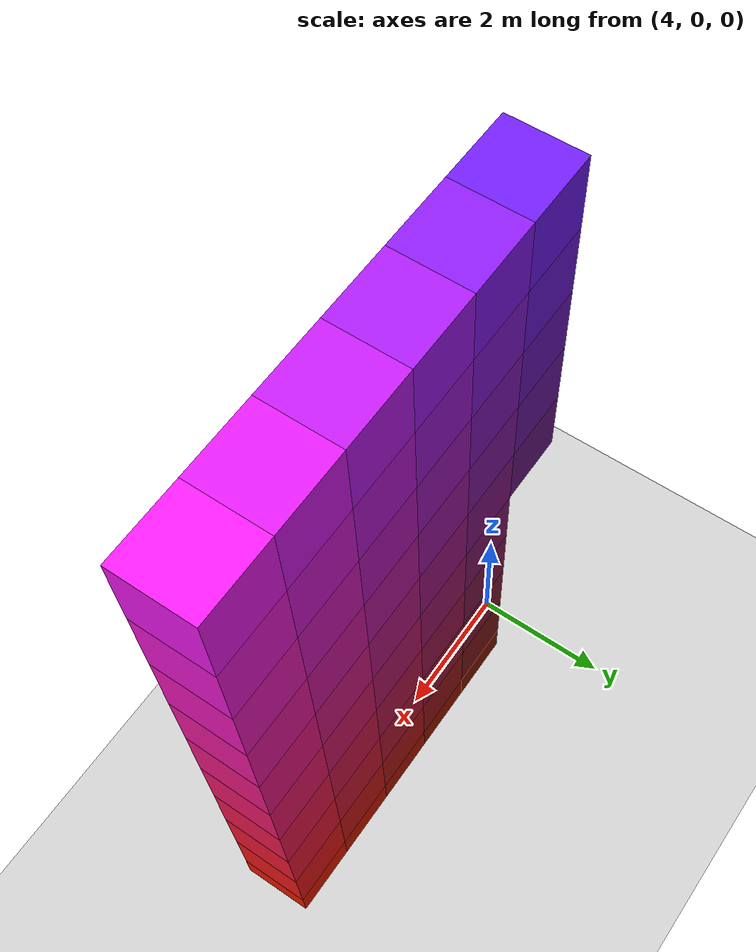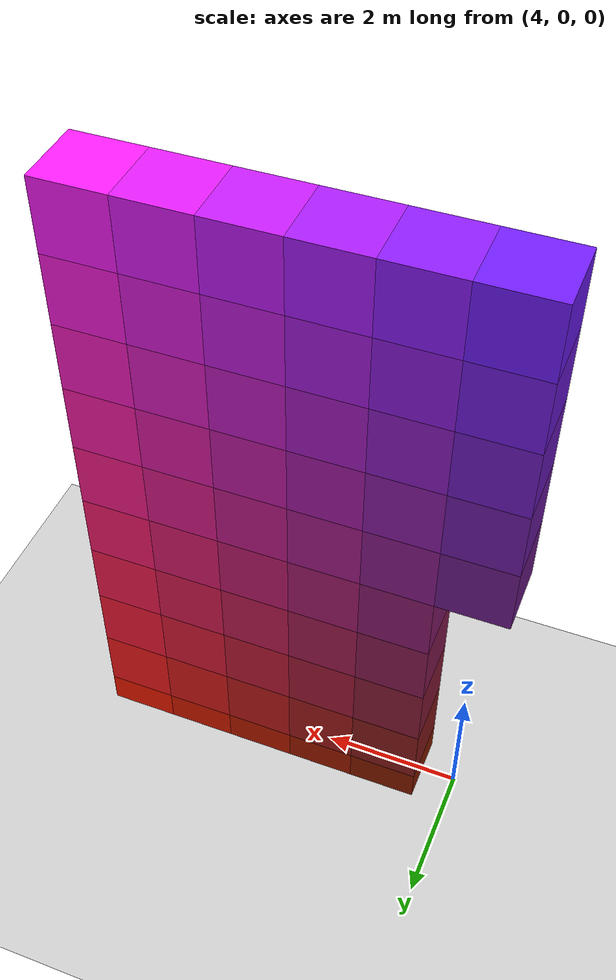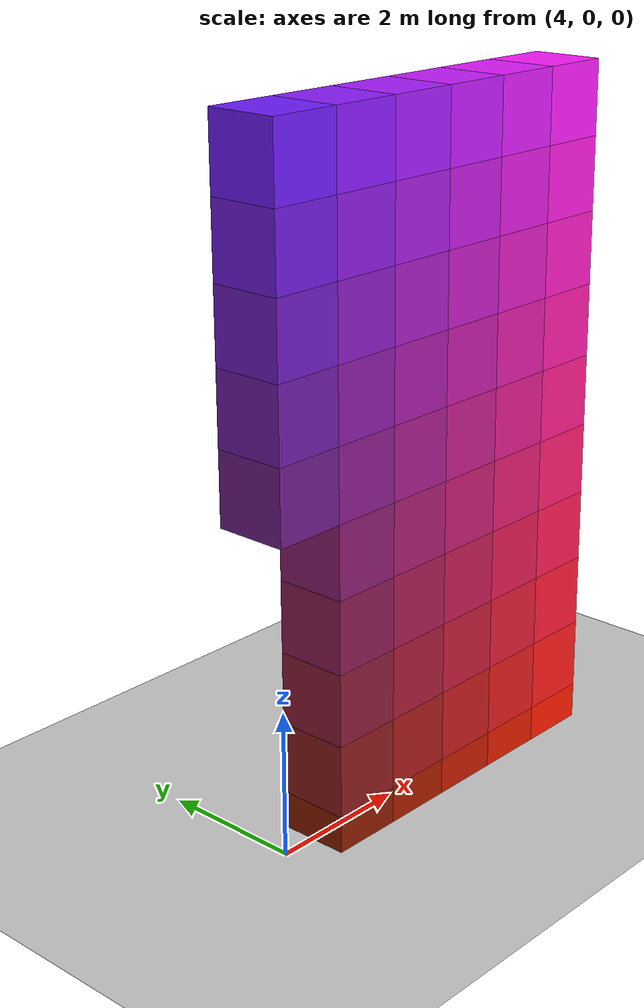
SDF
<sdf version="1.6">
 <world name="default">
  <model name="ground_plane">
   <static>true</static>
   <link name="link">
    <collision name="collision"><geometry><plane><normal>0 0 1</normal></plane></geometry></collision>
    <visual name="visual">
     <geometry><plane><normal>0 0 1</normal><size>100 100</size></plane></geometry>
     <material>
      <ambient>0.8 0.8 0.8 1</ambient>
      <diffuse>0.8 0.8 0.8 1</diffuse>
      <specular>0.8 0.8 0.8 1</specular>
     </material>
    </visual>
   </link>
  </model>
  <model name="model_4_1.0_5">
   <static>true</static>
   <pose>4.0
        0.0
        5.0
        0.0
        0.0
        0.0</pose>
   <link name="box_link">
    <inertial>
     <inertia><ixx>1</ixx><ixy>0</ixy><ixz>0</ixz><iyy>1</iyy><iyz>0</iyz><izz>1</izz></inertia>
     <mass>5.0</mass>
    </inertial>
    <collision name="box_collision"><geometry><box><size>1 1 1</size></box></geometry></collision>
    <visual name="box_visual">
     <geometry><box><size>1 1 1</size></box></geometry>
     <material>
      <ambient>0.4444444444444444
              0.1111111111111111
              0.5555555555555556
              1</ambient>
      <diffuse>0.4444444444444444
              0.1111111111111111
              0.5555555555555556
              1</diffuse>
      <specular>0.4444444444444444
              0.1111111111111111
              0.5555555555555556
              1</specular>
     </material>
    </visual>
   </link>
  </model>
  <model name="model_4_1.0_6">
   <static>true</static>
   <pose>4.0
        0.0
        6.0
        0.0
        0.0
        0.0</pose>
   <link name="box_link">
    <inertial>
     <inertia><ixx>1</ixx><ixy>0</ixy><ixz>0</ixz><iyy>1</iyy><iyz>0</iyz><izz>1</izz></inertia>
     <mass>5.0</mass>
    </inertial>
    <collision name="box_collision"><geometry><box><size>1 1 1</size></box></geometry></collision>
    <visual name="box_visual">
     <geometry><box><size>1 1 1</size></box></geometry>
     <material>
      <ambient>0.4444444444444444
              0.1111111111111111
              0.6666666666666666
              1</ambient>
      <diffuse>0.4444444444444444
              0.1111111111111111
              0.6666666666666666
              1</diffuse>
      <specular>0.4444444444444444
              0.1111111111111111
              0.6666666666666666
              1</specular>
     </material>
    </visual>
   </link>
  </model>
  <model name="model_4_1.0_7">
   <static>true</static>
   <pose>4.0
        0.0
        7.0
        0.0
        0.0
        0.0</pose>
   <link name="box_link">
    <inertial>
     <inertia><ixx>1</ixx><ixy>0</ixy><ixz>0</ixz><iyy>1</iyy><iyz>0</iyz><izz>1</izz></inertia>
     <mass>5.0</mass>
    </inertial>
    <collision name="box_collision"><geometry><box><size>1 1 1</size></box></geometry></collision>
    <visual name="box_visual">
     <geometry><box><size>1 1 1</size></box></geometry>
     <material>
      <ambient>0.4444444444444444
              0.1111111111111111
              0.7777777777777778
              1</ambient>
      <diffuse>0.4444444444444444
              0.1111111111111111
              0.7777777777777778
              1</diffuse>
      <specular>0.4444444444444444
              0.1111111111111111
              0.7777777777777778
              1</specular>
     </material>
    </visual>
   </link>
  </model>
  <model name="model_4_1.0_8">
   <static>true</static>
   <pose>4.0
        0.0
        8.0
        0.0
        0.0
        0.0</pose>
   <link name="box_link">
    <inertial>
     <inertia><ixx>1</ixx><ixy>0</ixy><ixz>0</ixz><iyy>1</iyy><iyz>0</iyz><izz>1</izz></inertia>
     <mass>5.0</mass>
    </inertial>
    <collision name="box_collision"><geometry><box><size>1 1 1</size></box></geometry></collision>
    <visual name="box_visual">
     <geometry><box><size>1 1 1</size></box></geometry>
     <material>
      <ambient>0.4444444444444444
              0.1111111111111111
              0.8888888888888888
              1</ambient>
      <diffuse>0.4444444444444444
              0.1111111111111111
              0.8888888888888888
              1</diffuse>
      <specular>0.4444444444444444
              0.1111111111111111
              0.8888888888888888
              1</specular>
     </material>
    </visual>
   </link>
  </model>
  <model name="model_4_1.0_9">
   <static>true</static>
   <pose>4.0
        0.0
        9.0
        0.0
        0.0
        0.0</pose>
   <link name="box_link">
    <inertial>
     <inertia><ixx>1</ixx><ixy>0</ixy><ixz>0</ixz><iyy>1</iyy><iyz>0</iyz><izz>1</izz></inertia>
     <mass>5.0</mass>
    </inertial>
    <collision name="box_collision"><geometry><box><size>1 1 1</size></box></geometry></collision>
    <visual name="box_visual">
     <geometry><box><size>1 1 1</size></box></geometry>
     <material>
      <ambient>0.4444444444444444
              0.1111111111111111
              1.0
              1</ambient>
      <diffuse>0.4444444444444444
              0.1111111111111111
              1.0
              1</diffuse>
      <specular>0.4444444444444444
              0.1111111111111111
              1.0
              1</specular>
     </material>
    </visual>
   </link>
  </model>
  <model name="model_5_1.0_0">
   <static>true</static>
   <pose>5.0
        0.0
        0.0
        0.0
        0.0
        0.0</pose>
   <link name="box_link">
    <inertial>
     <inertia><ixx>1</ixx><ixy>0</ixy><ixz>0</ixz><iyy>1</iyy><iyz>0</iyz><izz>1</izz></inertia>
     <mass>5.0</mass>
    </inertial>
    <collision name="box_collision"><geometry><box><size>1 1 1</size></box></geometry></collision>
    <visual name="box_visual">
     <geometry><box><size>1 1 1</size></box></geometry>
     <material>
      <ambient>0.5555555555555556
              0.1111111111111111
              0.0
              1</ambient>
      <diffuse>0.5555555555555556
              0.1111111111111111
              0.0
              1</diffuse>
      <specular>0.5555555555555556
              0.1111111111111111
              0.0
              1</specular>
     </material>
    </visual>
   </link>
  </model>
  <model name="model_5_1.0_1">
   <static>true</static>
   <pose>5.0
        0.0
        1.0
        0.0
        0.0
        0.0</pose>
   <link name="box_link">
    <inertial>
     <inertia><ixx>1</ixx><ixy>0</ixy><ixz>0</ixz><iyy>1</iyy><iyz>0</iyz><izz>1</izz></inertia>
     <mass>5.0</mass>
    </inertial>
    <collision name="box_collision"><geometry><box><size>1 1 1</size></box></geometry></collision>
    <visual name="box_visual">
     <geometry><box><size>1 1 1</size></box></geometry>
     <material>
      <ambient>0.5555555555555556
              0.1111111111111111
              0.1111111111111111
              1</ambient>
      <diffuse>0.5555555555555556
              0.1111111111111111
              0.1111111111111111
              1</diffuse>
      <specular>0.5555555555555556
              0.1111111111111111
              0.1111111111111111
              1</specular>
     </material>
    </visual>
   </link>
  </model>
  <model name="model_5_1.0_2">
   <static>true</static>
   <pose>5.0
        0.0
        2.0
        0.0
        0.0
        0.0</pose>
   <link name="box_link">
    <inertial>
     <inertia><ixx>1</ixx><ixy>0</ixy><ixz>0</ixz><iyy>1</iyy><iyz>0</iyz><izz>1</izz></inertia>
     <mass>5.0</mass>
    </inertial>
    <collision name="box_collision"><geometry><box><size>1 1 1</size></box></geometry></collision>
    <visual name="box_visual">
     <geometry><box><size>1 1 1</size></box></geometry>
     <material>
      <ambient>0.5555555555555556
              0.1111111111111111
              0.2222222222222222
              1</ambient>
      <diffuse>0.5555555555555556
              0.1111111111111111
              0.2222222222222222
              1</diffuse>
      <specular>0.5555555555555556
              0.1111111111111111
              0.2222222222222222
              1</specular>
     </material>
    </visual>
   </link>
  </model>
  <model name="model_5_1.0_3">
   <static>true</static>
   <pose>5.0
        0.0
        3.0
        0.0
        0.0
        0.0</pose>
   <link name="box_link">
    <inertial>
     <inertia><ixx>1</ixx><ixy>0</ixy><ixz>0</ixz><iyy>1</iyy><iyz>0</iyz><izz>1</izz></inertia>
     <mass>5.0</mass>
    </inertial>
    <collision name="box_collision"><geometry><box><size>1 1 1</size></box></geometry></collision>
    <visual name="box_visual">
     <geometry><box><size>1 1 1</size></box></geometry>
     <material>
      <ambient>0.5555555555555556
              0.1111111111111111
              0.3333333333333333
              1</ambient>
      <diffuse>0.5555555555555556
              0.1111111111111111
              0.3333333333333333
              1</diffuse>
      <specular>0.5555555555555556
              0.1111111111111111
              0.3333333333333333
              1</specular>
     </material>
    </visual>
   </link>
  </model>
  <model name="model_5_1.0_4">
   <static>true</static>
   <pose>5.0
        0.0
        4.0
        0.0
        0.0
        0.0</pose>
   <link name="box_link">
    <inertial>
     <inertia><ixx>1</ixx><ixy>0</ixy><ixz>0</ixz><iyy>1</iyy><iyz>0</iyz><izz>1</izz></inertia>
     <mass>5.0</mass>
    </inertial>
    <collision name="box_collision"><geometry><box><size>1 1 1</size></box></geometry></collision>
    <visual name="box_visual">
     <geometry><box><size>1 1 1</size></box></geometry>
     <material>
      <ambient>0.5555555555555556
              0.1111111111111111
              0.4444444444444444
              1</ambient>
      <diffuse>0.5555555555555556
              0.1111111111111111
              0.4444444444444444
              1</diffuse>
      <specular>0.5555555555555556
              0.1111111111111111
              0.4444444444444444
              1</specular>
     </material>
    </visual>
   </link>
  </model>
  <model name="model_5_1.0_5">
   <static>true</static>
   <pose>5.0
        0.0
        5.0
        0.0
        0.0
        0.0</pose>
   <link name="box_link">
    <inertial>
     <inertia><ixx>1</ixx><ixy>0</ixy><ixz>0</ixz><iyy>1</iyy><iyz>0</iyz><izz>1</izz></inertia>
     <mass>5.0</mass>
    </inertial>
    <collision name="box_collision"><geometry><box><size>1 1 1</size></box></geometry></collision>
    <visual name="box_visual">
     <geometry><box><size>1 1 1</size></box></geometry>
     <material>
      <ambient>0.5555555555555556
              0.1111111111111111
              0.5555555555555556
              1</ambient>
      <diffuse>0.5555555555555556
              0.1111111111111111
              0.5555555555555556
              1</diffuse>
      <specular>0.5555555555555556
              0.1111111111111111
              0.5555555555555556
              1</specular>
     </material>
    </visual>
   </link>
  </model>
  <model name="model_5_1.0_6">
   <static>true</static>
   <pose>5.0
        0.0
        6.0
        0.0
        0.0
        0.0</pose>
   <link name="box_link">
    <inertial>
     <inertia><ixx>1</ixx><ixy>0</ixy><ixz>0</ixz><iyy>1</iyy><iyz>0</iyz><izz>1</izz></inertia>
     <mass>5.0</mass>
    </inertial>
    <collision name="box_collision"><geometry><box><size>1 1 1</size></box></geometry></collision>
    <visual name="box_visual">
     <geometry><box><size>1 1 1</size></box></geometry>
     <material>
      <ambient>0.5555555555555556
              0.1111111111111111
              0.6666666666666666
              1</ambient>
      <diffuse>0.5555555555555556
              0.1111111111111111
              0.6666666666666666
              1</diffuse>
      <specular>0.5555555555555556
              0.1111111111111111
              0.6666666666666666
              1</specular>
     </material>
    </visual>
   </link>
  </model>
  <model name="model_5_1.0_7">
   <static>true</static>
   <pose>5.0
        0.0
        7.0
        0.0
        0.0
        0.0</pose>
   <link name="box_link">
    <inertial>
     <inertia><ixx>1</ixx><ixy>0</ixy><ixz>0</ixz><iyy>1</iyy><iyz>0</iyz><izz>1</izz></inertia>
     <mass>5.0</mass>
    </inertial>
    <collision name="box_collision"><geometry><box><size>1 1 1</size></box></geometry></collision>
    <visual name="box_visual">
     <geometry><box><size>1 1 1</size></box></geometry>
     <material>
      <ambient>0.5555555555555556
              0.1111111111111111
              0.7777777777777778
              1</ambient>
      <diffuse>0.5555555555555556
              0.1111111111111111
              0.7777777777777778
              1</diffuse>
      <specular>0.5555555555555556
              0.1111111111111111
              0.7777777777777778
              1</specular>
     </material>
    </visual>
   </link>
  </model>
  <model name="model_5_1.0_8">
   <static>true</static>
   <pose>5.0
        0.0
        8.0
        0.0
        0.0
        0.0</pose>
   <link name="box_link">
    <inertial>
     <inertia><ixx>1</ixx><ixy>0</ixy><ixz>0</ixz><iyy>1</iyy><iyz>0</iyz><izz>1</izz></inertia>
     <mass>5.0</mass>
    </inertial>
    <collision name="box_collision"><geometry><box><size>1 1 1</size></box></geometry></collision>
    <visual name="box_visual">
     <geometry><box><size>1 1 1</size></box></geometry>
     <material>
      <ambient>0.5555555555555556
              0.1111111111111111
              0.8888888888888888
              1</ambient>
      <diffuse>0.5555555555555556
              0.1111111111111111
              0.8888888888888888
              1</diffuse>
      <specular>0.5555555555555556
              0.1111111111111111
              0.8888888888888888
              1</specular>
     </material>
    </visual>
   </link>
  </model>
  <model name="model_5_1.0_9">
   <static>true</static>
   <pose>5.0
        0.0
        9.0
        0.0
        0.0
        0.0</pose>
   <link name="box_link">
    <inertial>
     <inertia><ixx>1</ixx><ixy>0</ixy><ixz>0</ixz><iyy>1</iyy><iyz>0</iyz><izz>1</izz></inertia>
     <mass>5.0</mass>
    </inertial>
    <collision name="box_collision"><geometry><box><size>1 1 1</size></box></geometry></collision>
    <visual name="box_visual">
     <geometry><box><size>1 1 1</size></box></geometry>
     <material>
      <ambient>0.5555555555555556
              0.1111111111111111
              1.0
              1</ambient>
      <diffuse>0.5555555555555556
              0.1111111111111111
              1.0
              1</diffuse>
      <specular>0.5555555555555556
              0.1111111111111111
              1.0
              1</specular>
     </material>
    </visual>
   </link>
  </model>
  <model name="model_6_1.0_0">
   <static>true</static>
   <pose>6.0
        0.0
        0.0
        0.0
        0.0
        0.0</pose>
   <link name="box_link">
    <inertial>
     <inertia><ixx>1</ixx><ixy>0</ixy><ixz>0</ixz><iyy>1</iyy><iyz>0</iyz><izz>1</izz></inertia>
     <mass>5.0</mass>
    </inertial>
    <collision name="box_collision"><geometry><box><size>1 1 1</size></box></geometry></collision>
    <visual name="box_visual">
     <geometry><box><size>1 1 1</size></box></geometry>
     <material>
      <ambient>0.6666666666666666
              0.1111111111111111
              0.0
              1</ambient>
      <diffuse>0.6666666666666666
              0.1111111111111111
              0.0
              1</diffuse>
      <specular>0.6666666666666666
              0.1111111111111111
              0.0
              1</specular>
     </material>
    </visual>
   </link>
  </model>
  <model name="model_6_1.0_1">
   <static>true</static>
   <pose>6.0
        0.0
        1.0
        0.0
        0.0
        0.0</pose>
   <link name="box_link">
    <inertial>
     <inertia><ixx>1</ixx><ixy>0</ixy><ixz>0</ixz><iyy>1</iyy><iyz>0</iyz><izz>1</izz></inertia>
     <mass>5.0</mass>
    </inertial>
    <collision name="box_collision"><geometry><box><size>1 1 1</size></box></geometry></collision>
    <visual name="box_visual">
     <geometry><box><size>1 1 1</size></box></geometry>
     <material>
      <ambient>0.6666666666666666
              0.1111111111111111
              0.1111111111111111
              1</ambient>
      <diffuse>0.6666666666666666
              0.1111111111111111
              0.1111111111111111
              1</diffuse>
      <specular>0.6666666666666666
              0.1111111111111111
              0.1111111111111111
              1</specular>
     </material>
    </visual>
   </link>
  </model>
  <model name="model_6_1.0_2">
   <static>true</static>
   <pose>6.0
        0.0
        2.0
        0.0
        0.0
        0.0</pose>
   <link name="box_link">
    <inertial>
     <inertia><ixx>1</ixx><ixy>0</ixy><ixz>0</ixz><iyy>1</iyy><iyz>0</iyz><izz>1</izz></inertia>
     <mass>5.0</mass>
    </inertial>
    <collision name="box_collision"><geometry><box><size>1 1 1</size></box></geometry></collision>
    <visual name="box_visual">
     <geometry><box><size>1 1 1</size></box></geometry>
     <material>
      <ambient>0.6666666666666666
              0.1111111111111111
              0.2222222222222222
              1</ambient>
      <diffuse>0.6666666666666666
              0.1111111111111111
              0.2222222222222222
              1</diffuse>
      <specular>0.6666666666666666
              0.1111111111111111
              0.2222222222222222
              1</specular>
     </material>
    </visual>
   </link>
  </model>
  <model name="model_6_1.0_3">
   <static>true</static>
   <pose>6.0
        0.0
        3.0
        0.0
        0.0
        0.0</pose>
   <link name="box_link">
    <inertial>
     <inertia><ixx>1</ixx><ixy>0</ixy><ixz>0</ixz><iyy>1</iyy><iyz>0</iyz><izz>1</izz></inertia>
     <mass>5.0</mass>
    </inertial>
    <collision name="box_collision"><geometry><box><size>1 1 1</size></box></geometry></collision>
    <visual name="box_visual">
     <geometry><box><size>1 1 1</size></box></geometry>
     <material>
      <ambient>0.6666666666666666
              0.1111111111111111
              0.3333333333333333
              1</ambient>
      <diffuse>0.6666666666666666
              0.1111111111111111
              0.3333333333333333
              1</diffuse>
      <specular>0.6666666666666666
              0.1111111111111111
              0.3333333333333333
              1</specular>
     </material>
    </visual>
   </link>
  </model>
  <model name="model_6_1.0_4">
   <static>true</static>
   <pose>6.0
        0.0
        4.0
        0.0
        0.0
        0.0</pose>
   <link name="box_link">
    <inertial>
     <inertia><ixx>1</ixx><ixy>0</ixy><ixz>0</ixz><iyy>1</iyy><iyz>0</iyz><izz>1</izz></inertia>
     <mass>5.0</mass>
    </inertial>
    <collision name="box_collision"><geometry><box><size>1 1 1</size></box></geometry></collision>
    <visual name="box_visual">
     <geometry><box><size>1 1 1</size></box></geometry>
     <material>
      <ambient>0.6666666666666666
              0.1111111111111111
              0.4444444444444444
              1</ambient>
      <diffuse>0.6666666666666666
              0.1111111111111111
              0.4444444444444444
              1</diffuse>
      <specular>0.6666666666666666
              0.1111111111111111
              0.4444444444444444
              1</specular>
     </material>
    </visual>
   </link>
  </model>
  <model name="model_6_1.0_5">
   <static>true</static>
   <pose>6.0
        0.0
        5.0
        0.0
        0.0
        0.0</pose>
   <link name="box_link">
    <inertial>
     <inertia><ixx>1</ixx><ixy>0</ixy><ixz>0</ixz><iyy>1</iyy><iyz>0</iyz><izz>1</izz></inertia>
     <mass>5.0</mass>
    </inertial>
    <collision name="box_collision"><geometry><box><size>1 1 1</size></box></geometry></collision>
    <visual name="box_visual">
     <geometry><box><size>1 1 1</size></box></geometry>
     <material>
      <ambient>0.6666666666666666
              0.1111111111111111
              0.5555555555555556
              1</ambient>
      <diffuse>0.6666666666666666
              0.1111111111111111
              0.5555555555555556
              1</diffuse>
      <specular>0.6666666666666666
              0.1111111111111111
              0.5555555555555556
              1</specular>
     </material>
    </visual>
   </link>
  </model>
  <model name="model_6_1.0_6">
   <static>true</static>
   <pose>6.0
        0.0
        6.0
        0.0
        0.0
        0.0</pose>
   <link name="box_link">
    <inertial>
     <inertia><ixx>1</ixx><ixy>0</ixy><ixz>0</ixz><iyy>1</iyy><iyz>0</iyz><izz>1</izz></inertia>
     <mass>5.0</mass>
    </inertial>
    <collision name="box_collision"><geometry><box><size>1 1 1</size></box></geometry></collision>
    <visual name="box_visual">
     <geometry><box><size>1 1 1</size></box></geometry>
     <material>
      <ambient>0.6666666666666666
              0.1111111111111111
              0.6666666666666666
              1</ambient>
      <diffuse>0.6666666666666666
              0.1111111111111111
              0.6666666666666666
              1</diffuse>
      <specular>0.6666666666666666
              0.1111111111111111
              0.6666666666666666
              1</specular>
     </material>
    </visual>
   </link>
  </model>
  <model name="model_6_1.0_7">
   <static>true</static>
   <pose>6.0
        0.0
        7.0
        0.0
        0.0
        0.0</pose>
   <link name="box_link">
    <inertial>
     <inertia><ixx>1</ixx><ixy>0</ixy><ixz>0</ixz><iyy>1</iyy><iyz>0</iyz><izz>1</izz></inertia>
     <mass>5.0</mass>
    </inertial>
    <collision name="box_collision"><geometry><box><size>1 1 1</size></box></geometry></collision>
    <visual name="box_visual">
     <geometry><box><size>1 1 1</size></box></geometry>
     <material>
      <ambient>0.6666666666666666
              0.1111111111111111
              0.7777777777777778
              1</ambient>
      <diffuse>0.6666666666666666
              0.1111111111111111
              0.7777777777777778
              1</diffuse>
      <specular>0.6666666666666666
              0.1111111111111111
              0.7777777777777778
              1</specular>
     </material>
    </visual>
   </link>
  </model>
  <model name="model_6_1.0_8">
   <static>true</static>
   <pose>6.0
        0.0
        8.0
        0.0
        0.0
        0.0</pose>
   <link name="box_link">
    <inertial>
     <inertia><ixx>1</ixx><ixy>0</ixy><ixz>0</ixz><iyy>1</iyy><iyz>0</iyz><izz>1</izz></inertia>
     <mass>5.0</mass>
    </inertial>
    <collision name="box_collision"><geometry><box><size>1 1 1</size></box></geometry></collision>
    <visual name="box_visual">
     <geometry><box><size>1 1 1</size></box></geometry>
     <material>
      <ambient>0.6666666666666666
              0.1111111111111111
              0.8888888888888888
              1</ambient>
      <diffuse>0.6666666666666666
              0.1111111111111111
              0.8888888888888888
              1</diffuse>
      <specular>0.6666666666666666
              0.1111111111111111
              0.8888888888888888
              1</specular>
     </material>
    </visual>
   </link>
  </model>
  <model name="model_6_1.0_9">
   <static>true</static>
   <pose>6.0
        0.0
        9.0
        0.0
        0.0
        0.0</pose>
   <link name="box_link">
    <inertial>
     <inertia><ixx>1</ixx><ixy>0</ixy><ixz>0</ixz><iyy>1</iyy><iyz>0</iyz><izz>1</izz></inertia>
     <mass>5.0</mass>
    </inertial>
    <collision name="box_collision"><geometry><box><size>1 1 1</size></box></geometry></collision>
    <visual name="box_visual">
     <geometry><box><size>1 1 1</size></box></geometry>
     <material>
      <ambient>0.6666666666666666
              0.1111111111111111
              1.0
              1</ambient>
      <diffuse>0.6666666666666666
              0.1111111111111111
              1.0
              1</diffuse>
      <specular>0.6666666666666666
              0.1111111111111111
              1.0
              1</specular>
     </material>
    </visual>
   </link>
  </model>
  <model name="model_7_1.0_0">
   <static>true</static>
   <pose>7.0
        0.0
        0.0
        0.0
        0.0
        0.0</pose>
   <link name="box_link">
    <inertial>
     <inertia><ixx>1</ixx><ixy>0</ixy><ixz>0</ixz><iyy>1</iyy><iyz>0</iyz><izz>1</izz></inertia>
     <mass>5.0</mass>
    </inertial>
    <collision name="box_collision"><geometry><box><size>1 1 1</size></box></geometry></collision>
    <visual name="box_visual">
     <geometry><box><size>1 1 1</size></box></geometry>
     <material>
      <ambient>0.7777777777777778
              0.1111111111111111
              0.0
              1</ambient>
      <diffuse>0.7777777777777778
              0.1111111111111111
              0.0
              1</diffuse>
      <specular>0.7777777777777778
              0.1111111111111111
              0.0
              1</specular>
     </material>
    </visual>
   </link>
  </model>
  <model name="model_7_1.0_1">
   <static>true</static>
   <pose>7.0
        0.0
        1.0
        0.0
        0.0
        0.0</pose>
   <link name="box_link">
    <inertial>
     <inertia><ixx>1</ixx><ixy>0</ixy><ixz>0</ixz><iyy>1</iyy><iyz>0</iyz><izz>1</izz></inertia>
     <mass>5.0</mass>
    </inertial>
    <collision name="box_collision"><geometry><box><size>1 1 1</size></box></geometry></collision>
    <visual name="box_visual">
     <geometry><box><size>1 1 1</size></box></geometry>
     <material>
      <ambient>0.7777777777777778
              0.1111111111111111
              0.1111111111111111
              1</ambient>
      <diffuse>0.7777777777777778
              0.1111111111111111
              0.1111111111111111
              1</diffuse>
      <specular>0.7777777777777778
              0.1111111111111111
              0.1111111111111111
              1</specular>
     </material>
    </visual>
   </link>
  </model>
  <model name="model_7_1.0_2">
   <static>true</static>
   <pose>7.0
        0.0
        2.0
        0.0
        0.0
        0.0</pose>
   <link name="box_link">
    <inertial>
     <inertia><ixx>1</ixx><ixy>0</ixy><ixz>0</ixz><iyy>1</iyy><iyz>0</iyz><izz>1</izz></inertia>
     <mass>5.0</mass>
    </inertial>
    <collision name="box_collision"><geometry><box><size>1 1 1</size></box></geometry></collision>
    <visual name="box_visual">
     <geometry><box><size>1 1 1</size></box></geometry>
     <material>
      <ambient>0.7777777777777778
              0.1111111111111111
              0.2222222222222222
              1</ambient>
      <diffuse>0.7777777777777778
              0.1111111111111111
              0.2222222222222222
              1</diffuse>
      <specular>0.7777777777777778
              0.1111111111111111
              0.2222222222222222
              1</specular>
     </material>
    </visual>
   </link>
  </model>
  <model name="model_7_1.0_3">
   <static>true</static>
   <pose>7.0
        0.0
        3.0
        0.0
        0.0
        0.0</pose>
   <link name="box_link">
    <inertial>
     <inertia><ixx>1</ixx><ixy>0</ixy><ixz>0</ixz><iyy>1</iyy><iyz>0</iyz><izz>1</izz></inertia>
     <mass>5.0</mass>
    </inertial>
    <collision name="box_collision"><geometry><box><size>1 1 1</size></box></geometry></collision>
    <visual name="box_visual">
     <geometry><box><size>1 1 1</size></box></geometry>
     <material>
      <ambient>0.7777777777777778
              0.1111111111111111
              0.3333333333333333
              1</ambient>
      <diffuse>0.7777777777777778
              0.1111111111111111
              0.3333333333333333
              1</diffuse>
      <specular>0.7777777777777778
              0.1111111111111111
              0.3333333333333333
              1</specular>
     </material>
    </visual>
   </link>
  </model>
  <model name="model_7_1.0_4">
   <static>true</static>
   <pose>7.0
        0.0
        4.0
        0.0
        0.0
        0.0</pose>
   <link name="box_link">
    <inertial>
     <inertia><ixx>1</ixx><ixy>0</ixy><ixz>0</ixz><iyy>1</iyy><iyz>0</iyz><izz>1</izz></inertia>
     <mass>5.0</mass>
    </inertial>
    <collision name="box_collision"><geometry><box><size>1 1 1</size></box></geometry></collision>
    <visual name="box_visual">
     <geometry><box><size>1 1 1</size></box></geometry>
     <material>
      <ambient>0.7777777777777778
              0.1111111111111111
              0.4444444444444444
              1</ambient>
      <diffuse>0.7777777777777778
              0.1111111111111111
              0.4444444444444444
              1</diffuse>
      <specular>0.7777777777777778
              0.1111111111111111
              0.4444444444444444
              1</specular>
     </material>
    </visual>
   </link>
  </model>
  <model name="model_7_1.0_5">
   <static>true</static>
   <pose>7.0
        0.0
        5.0
        0.0
        0.0
        0.0</pose>
   <link name="box_link">
    <inertial>
     <inertia><ixx>1</ixx><ixy>0</ixy><ixz>0</ixz><iyy>1</iyy><iyz>0</iyz><izz>1</izz></inertia>
     <mass>5.0</mass>
    </inertial>
    <collision name="box_collision"><geometry><box><size>1 1 1</size></box></geometry></collision>
    <visual name="box_visual">
     <geometry><box><size>1 1 1</size></box></geometry>
     <material>
      <ambient>0.7777777777777778
              0.1111111111111111
              0.5555555555555556
              1</ambient>
      <diffuse>0.7777777777777778
              0.1111111111111111
              0.5555555555555556
              1</diffuse>
      <specular>0.7777777777777778
              0.1111111111111111
              0.5555555555555556
              1</specular>
     </material>
    </visual>
   </link>
  </model>
  <model name="model_7_1.0_6">
   <static>true</static>
   <pose>7.0
        0.0
        6.0
        0.0
        0.0
        0.0</pose>
   <link name="box_link">
    <inertial>
     <inertia><ixx>1</ixx><ixy>0</ixy><ixz>0</ixz><iyy>1</iyy><iyz>0</iyz><izz>1</izz></inertia>
     <mass>5.0</mass>
    </inertial>
    <collision name="box_collision"><geometry><box><size>1 1 1</size></box></geometry></collision>
    <visual name="box_visual">
     <geometry><box><size>1 1 1</size></box></geometry>
     <material>
      <ambient>0.7777777777777778
              0.1111111111111111
              0.6666666666666666
              1</ambient>
      <diffuse>0.7777777777777778
              0.1111111111111111
              0.6666666666666666
              1</diffuse>
      <specular>0.7777777777777778
              0.1111111111111111
              0.6666666666666666
              1</specular>
     </material>
    </visual>
   </link>
  </model>
  <model name="model_7_1.0_7">
   <static>true</static>
   <pose>7.0
        0.0
        7.0
        0.0
        0.0
        0.0</pose>
   <link name="box_link">
    <inertial>
     <inertia><ixx>1</ixx><ixy>0</ixy><ixz>0</ixz><iyy>1</iyy><iyz>0</iyz><izz>1</izz></inertia>
     <mass>5.0</mass>
    </inertial>
    <collision name="box_collision"><geometry><box><size>1 1 1</size></box></geometry></collision>
    <visual name="box_visual">
     <geometry><box><size>1 1 1</size></box></geometry>
     <material>
      <ambient>0.7777777777777778
              0.1111111111111111
              0.7777777777777778
              1</ambient>
      <diffuse>0.7777777777777778
              0.1111111111111111
              0.7777777777777778
              1</diffuse>
      <specular>0.7777777777777778
              0.1111111111111111
              0.7777777777777778
              1</specular>
     </material>
    </visual>
   </link>
  </model>
  <model name="model_7_1.0_8">
   <static>true</static>
   <pose>7.0
        0.0
        8.0
        0.0
        0.0
        0.0</pose>
   <link name="box_link">
    <inertial>
     <inertia><ixx>1</ixx><ixy>0</ixy><ixz>0</ixz><iyy>1</iyy><iyz>0</iyz><izz>1</izz></inertia>
     <mass>5.0</mass>
    </inertial>
    <collision name="box_collision"><geometry><box><size>1 1 1</size></box></geometry></collision>
    <visual name="box_visual">
     <geometry><box><size>1 1 1</size></box></geometry>
     <material>
      <ambient>0.7777777777777778
              0.1111111111111111
              0.8888888888888888
              1</ambient>
      <diffuse>0.7777777777777778
              0.1111111111111111
              0.8888888888888888
              1</diffuse>
      <specular>0.7777777777777778
              0.1111111111111111
              0.8888888888888888
              1</specular>
     </material>
    </visual>
   </link>
  </model>
  <model name="model_7_1.0_9">
   <static>true</static>
   <pose>7.0
        0.0
        9.0
        0.0
        0.0
        0.0</pose>
   <link name="box_link">
    <inertial>
     <inertia><ixx>1</ixx><ixy>0</ixy><ixz>0</ixz><iyy>1</iyy><iyz>0</iyz><izz>1</izz></inertia>
     <mass>5.0</mass>
    </inertial>
    <collision name="box_collision"><geometry><box><size>1 1 1</size></box></geometry></collision>
    <visual name="box_visual">
     <geometry><box><size>1 1 1</size></box></geometry>
     <material>
      <ambient>0.7777777777777778
              0.1111111111111111
              1.0
              1</ambient>
      <diffuse>0.7777777777777778
              0.1111111111111111
              1.0
              1</diffuse>
      <specular>0.7777777777777778
              0.1111111111111111
              1.0
              1</specular>
     </material>
    </visual>
   </link>
  </model>
  <model name="model_8_1.0_0">
   <static>true</static>
   <pose>8.0
        0.0
        0.0
        0.0
        0.0
        0.0</pose>
   <link name="box_link">
    <inertial>
     <inertia><ixx>1</ixx><ixy>0</ixy><ixz>0</ixz><iyy>1</iyy><iyz>0</iyz><izz>1</izz></inertia>
     <mass>5.0</mass>
    </inertial>
    <collision name="box_collision"><geometry><box><size>1 1 1</size></box></geometry></collision>
    <visual name="box_visual">
     <geometry><box><size>1 1 1</size></box></geometry>
     <material>
      <ambient>0.8888888888888888
              0.1111111111111111
              0.0
              1</ambient>
      <diffuse>0.8888888888888888
              0.1111111111111111
              0.0
              1</diffuse>
      <specular>0.8888888888888888
              0.1111111111111111
              0.0
              1</specular>
     </material>
    </visual>
   </link>
  </model>
  <model name="model_8_1.0_1">
   <static>true</static>
   <pose>8.0
        0.0
        1.0
        0.0
        0.0
        0.0</pose>
   <link name="box_link">
    <inertial>
     <inertia><ixx>1</ixx><ixy>0</ixy><ixz>0</ixz><iyy>1</iyy><iyz>0</iyz><izz>1</izz></inertia>
     <mass>5.0</mass>
    </inertial>
    <collision name="box_collision"><geometry><box><size>1 1 1</size></box></geometry></collision>
    <visual name="box_visual">
     <geometry><box><size>1 1 1</size></box></geometry>
     <material>
      <ambient>0.8888888888888888
              0.1111111111111111
              0.1111111111111111
              1</ambient>
      <diffuse>0.8888888888888888
              0.1111111111111111
              0.1111111111111111
              1</diffuse>
      <specular>0.8888888888888888
              0.1111111111111111
              0.1111111111111111
              1</specular>
     </material>
    </visual>
   </link>
  </model>
  <model name="model_8_1.0_2">
   <static>true</static>
   <pose>8.0
        0.0
        2.0
        0.0
        0.0
        0.0</pose>
   <link name="box_link">
    <inertial>
     <inertia><ixx>1</ixx><ixy>0</ixy><ixz>0</ixz><iyy>1</iyy><iyz>0</iyz><izz>1</izz></inertia>
     <mass>5.0</mass>
    </inertial>
    <collision name="box_collision"><geometry><box><size>1 1 1</size></box></geometry></collision>
    <visual name="box_visual">
     <geometry><box><size>1 1 1</size></box></geometry>
     <material>
      <ambient>0.8888888888888888
              0.1111111111111111
              0.2222222222222222
              1</ambient>
      <diffuse>0.8888888888888888
              0.1111111111111111
              0.2222222222222222
              1</diffuse>
      <specular>0.8888888888888888
              0.1111111111111111
              0.2222222222222222
              1</specular>
     </material>
    </visual>
   </link>
  </model>
  <model name="model_8_1.0_3">
   <static>true</static>
   <pose>8.0
        0.0
        3.0
        0.0
        0.0
        0.0</pose>
   <link name="box_link">
    <inertial>
     <inertia><ixx>1</ixx><ixy>0</ixy><ixz>0</ixz><iyy>1</iyy><iyz>0</iyz><izz>1</izz></inertia>
     <mass>5.0</mass>
    </inertial>
    <collision name="box_collision"><geometry><box><size>1 1 1</size></box></geometry></collision>
    <visual name="box_visual">
     <geometry><box><size>1 1 1</size></box></geometry>
     <material>
      <ambient>0.8888888888888888
              0.1111111111111111
              0.3333333333333333
              1</ambient>
      <diffuse>0.8888888888888888
              0.1111111111111111
              0.3333333333333333
              1</diffuse>
      <specular>0.8888888888888888
              0.1111111111111111
              0.3333333333333333
              1</specular>
     </material>
    </visual>
   </link>
  </model>
  <model name="model_8_1.0_4">
   <static>true</static>
   <pose>8.0
        0.0
        4.0
        0.0
        0.0
        0.0</pose>
   <link name="box_link">
    <inertial>
     <inertia><ixx>1</ixx><ixy>0</ixy><ixz>0</ixz><iyy>1</iyy><iyz>0</iyz><izz>1</izz></inertia>
     <mass>5.0</mass>
    </inertial>
    <collision name="box_collision"><geometry><box><size>1 1 1</size></box></geometry></collision>
    <visual name="box_visual">
     <geometry><box><size>1 1 1</size></box></geometry>
     <material>
      <ambient>0.8888888888888888
              0.1111111111111111
              0.4444444444444444
              1</ambient>
      <diffuse>0.8888888888888888
              0.1111111111111111
              0.4444444444444444
              1</diffuse>
      <specular>0.8888888888888888
              0.1111111111111111
              0.4444444444444444
              1</specular>
     </material>
    </visual>
   </link>
  </model>
  <model name="model_8_1.0_5">
   <static>true</static>
   <pose>8.0
        0.0
        5.0
        0.0
        0.0
        0.0</pose>
   <link name="box_link">
    <inertial>
     <inertia><ixx>1</ixx><ixy>0</ixy><ixz>0</ixz><iyy>1</iyy><iyz>0</iyz><izz>1</izz></inertia>
     <mass>5.0</mass>
    </inertial>
    <collision name="box_collision"><geometry><box><size>1 1 1</size></box></geometry></collision>
    <visual name="box_visual">
     <geometry><box><size>1 1 1</size></box></geometry>
     <material>
      <ambient>0.8888888888888888
              0.1111111111111111
              0.5555555555555556
              1</ambient>
      <diffuse>0.8888888888888888
              0.1111111111111111
              0.5555555555555556
              1</diffuse>
      <specular>0.8888888888888888
              0.1111111111111111
              0.5555555555555556
              1</specular>
     </material>
    </visual>
   </link>
  </model>
  <model name="model_8_1.0_6">
   <static>true</static>
   <pose>8.0
        0.0
        6.0
        0.0
        0.0
        0.0</pose>
   <link name="box_link">
    <inertial>
     <inertia><ixx>1</ixx><ixy>0</ixy><ixz>0</ixz><iyy>1</iyy><iyz>0</iyz><izz>1</izz></inertia>
     <mass>5.0</mass>
    </inertial>
    <collision name="box_collision"><geometry><box><size>1 1 1</size></box></geometry></collision>
    <visual name="box_visual">
     <geometry><box><size>1 1 1</size></box></geometry>
     <material>
      <ambient>0.8888888888888888
              0.1111111111111111
              0.6666666666666666
              1</ambient>
      <diffuse>0.8888888888888888
              0.1111111111111111
              0.6666666666666666
              1</diffuse>
      <specular>0.8888888888888888
              0.1111111111111111
              0.6666666666666666
              1</specular>
     </material>
    </visual>
   </link>
  </model>
  <model name="model_8_1.0_7">
   <static>true</static>
   <pose>8.0
        0.0
        7.0
        0.0
        0.0
        0.0</pose>
   <link name="box_link">
    <inertial>
     <inertia><ixx>1</ixx><ixy>0</ixy><ixz>0</ixz><iyy>1</iyy><iyz>0</iyz><izz>1</izz></inertia>
     <mass>5.0</mass>
    </inertial>
    <collision name="box_collision"><geometry><box><size>1 1 1</size></box></geometry></collision>
    <visual name="box_visual">
     <geometry><box><size>1 1 1</size></box></geometry>
     <material>
      <ambient>0.8888888888888888
              0.1111111111111111
              0.7777777777777778
              1</ambient>
      <diffuse>0.8888888888888888
              0.1111111111111111
              0.7777777777777778
              1</diffuse>
      <specular>0.8888888888888888
              0.1111111111111111
              0.7777777777777778
              1</specular>
     </material>
    </visual>
   </link>
  </model>
  <model name="model_8_1.0_8">
   <static>true</static>
   <pose>8.0
        0.0
        8.0
        0.0
        0.0
        0.0</pose>
   <link name="box_link">
    <inertial>
     <inertia><ixx>1</ixx><ixy>0</ixy><ixz>0</ixz><iyy>1</iyy><iyz>0</iyz><izz>1</izz></inertia>
     <mass>5.0</mass>
    </inertial>
    <collision name="box_collision"><geometry><box><size>1 1 1</size></box></geometry></collision>
    <visual name="box_visual">
     <geometry><box><size>1 1 1</size></box></geometry>
     <material>
      <ambient>0.8888888888888888
              0.1111111111111111
              0.8888888888888888
              1</ambient>
      <diffuse>0.8888888888888888
              0.1111111111111111
              0.8888888888888888
              1</diffuse>
      <specular>0.8888888888888888
              0.1111111111111111
              0.8888888888888888
              1</specular>
     </material>
    </visual>
   </link>
  </model>
  <model name="model_8_1.0_9">
   <static>true</static>
   <pose>8.0
        0.0
        9.0
        0.0
        0.0
        0.0</pose>
   <link name="box_link">
    <inertial>
     <inertia><ixx>1</ixx><ixy>0</ixy><ixz>0</ixz><iyy>1</iyy><iyz>0</iyz><izz>1</izz></inertia>
     <mass>5.0</mass>
    </inertial>
    <collision name="box_collision"><geometry><box><size>1 1 1</size></box></geometry></collision>
    <visual name="box_visual">
     <geometry><box><size>1 1 1</size></box></geometry>
     <material>
      <ambient>0.8888888888888888
              0.1111111111111111
              1.0
              1</ambient>
      <diffuse>0.8888888888888888
              0.1111111111111111
              1.0
              1</diffuse>
      <specular>0.8888888888888888
              0.1111111111111111
              1.0
              1</specular>
     </material>
    </visual>
   </link>
  </model>
  <model name="model_9_1.0_0">
   <static>true</static>
   <pose>9.0
        0.0
        0.0
        0.0
        0.0
        0.0</pose>
   <link name="box_link">
    <inertial>
     <inertia><ixx>1</ixx><ixy>0</ixy><ixz>0</ixz><iyy>1</iyy><iyz>0</iyz><izz>1</izz></inertia>
     <mass>5.0</mass>
    </inertial>
    <collision name="box_collision"><geometry><box><size>1 1 1</size></box></geometry></collision>
    <visual name="box_visual">
     <geometry><box><size>1 1 1</size></box></geometry>
     <material>
      <ambient>1.0
              0.1111111111111111
              0.0
              1</ambient>
      <diffuse>1.0
              0.1111111111111111
              0.0
              1</diffuse>
      <specular>1.0
              0.1111111111111111
              0.0
              1</specular>
     </material>
    </visual>
   </link>
  </model>
  <model name="model_9_1.0_1">
   <static>true</static>
   <pose>9.0
        0.0
        1.0
        0.0
        0.0
        0.0</pose>
   <link name="box_link">
    <inertial>
     <inertia><ixx>1</ixx><ixy>0</ixy><ixz>0</ixz><iyy>1</iyy><iyz>0</iyz><izz>1</izz></inertia>
     <mass>5.0</mass>
    </inertial>
    <collision name="box_collision"><geometry><box><size>1 1 1</size></box></geometry></collision>
    <visual name="box_visual">
     <geometry><box><size>1 1 1</size></box></geometry>
     <material>
      <ambient>1.0
              0.1111111111111111
              0.1111111111111111
              1</ambient>
      <diffuse>1.0
              0.1111111111111111
              0.1111111111111111
              1</diffuse>
      <specular>1.0
              0.1111111111111111
              0.1111111111111111
              1</specular>
     </material>
    </visual>
   </link>
  </model>
  <model name="model_9_1.0_2">
   <static>true</static>
   <pose>9.0
        0.0
        2.0
        0.0
        0.0
        0.0</pose>
   <link name="box_link">
    <inertial>
     <inertia><ixx>1</ixx><ixy>0</ixy><ixz>0</ixz><iyy>1</iyy><iyz>0</iyz><izz>1</izz></inertia>
     <mass>5.0</mass>
    </inertial>
    <collision name="box_collision"><geometry><box><size>1 1 1</size></box></geometry></collision>
    <visual name="box_visual">
     <geometry><box><size>1 1 1</size></box></geometry>
     <material>
      <ambient>1.0
              0.1111111111111111
              0.2222222222222222
              1</ambient>
      <diffuse>1.0
              0.1111111111111111
              0.2222222222222222
              1</diffuse>
      <specular>1.0
              0.1111111111111111
              0.2222222222222222
              1</specular>
     </material>
    </visual>
   </link>
  </model>
  <model name="model_9_1.0_3">
   <static>true</static>
   <pose>9.0
        0.0
        3.0
        0.0
        0.0
        0.0</pose>
   <link name="box_link">
    <inertial>
     <inertia><ixx>1</ixx><ixy>0</ixy><ixz>0</ixz><iyy>1</iyy><iyz>0</iyz><izz>1</izz></inertia>
     <mass>5.0</mass>
    </inertial>
    <collision name="box_collision"><geometry><box><size>1 1 1</size></box></geometry></collision>
    <visual name="box_visual">
     <geometry><box><size>1 1 1</size></box></geometry>
     <material>
      <ambient>1.0
              0.1111111111111111
              0.3333333333333333
              1</ambient>
      <diffuse>1.0
              0.1111111111111111
              0.3333333333333333
              1</diffuse>
      <specular>1.0
              0.1111111111111111
              0.3333333333333333
              1</specular>
     </material>
    </visual>
   </link>
  </model>
  <model name="model_9_1.0_4">
   <static>true</static>
   <pose>9.0
        0.0
        4.0
        0.0
        0.0
        0.0</pose>
   <link name="box_link">
    <inertial>
     <inertia><ixx>1</ixx><ixy>0</ixy><ixz>0</ixz><iyy>1</iyy><iyz>0</iyz><izz>1</izz></inertia>
     <mass>5.0</mass>
    </inertial>
    <collision name="box_collision"><geometry><box><size>1 1 1</size></box></geometry></collision>
    <visual name="box_visual">
     <geometry><box><size>1 1 1</size></box></geometry>
     <material>
      <ambient>1.0
              0.1111111111111111
              0.4444444444444444
              1</ambient>
      <diffuse>1.0
              0.1111111111111111
              0.4444444444444444
              1</diffuse>
      <specular>1.0
              0.1111111111111111
              0.4444444444444444
              1</specular>
     </material>
    </visual>
   </link>
  </model>
  <model name="model_9_1.0_5">
   <static>true</static>
   <pose>9.0
        0.0
        5.0
        0.0
        0.0
        0.0</pose>
   <link name="box_link">
    <inertial>
     <inertia><ixx>1</ixx><ixy>0</ixy><ixz>0</ixz><iyy>1</iyy><iyz>0</iyz><izz>1</izz></inertia>
     <mass>5.0</mass>
    </inertial>
    <collision name="box_collision"><geometry><box><size>1 1 1</size></box></geometry></collision>
    <visual name="box_visual">
     <geometry><box><size>1 1 1</size></box></geometry>
     <material>
      <ambient>1.0
              0.1111111111111111
              0.5555555555555556
              1</ambient>
      <diffuse>1.0
              0.1111111111111111
              0.5555555555555556
              1</diffuse>
      <specular>1.0
              0.1111111111111111
              0.5555555555555556
              1</specular>
     </material>
    </visual>
   </link>
  </model>
  <model name="model_9_1.0_6">
   <static>true</static>
   <pose>9.0
        0.0
        6.0
        0.0
        0.0
        0.0</pose>
   <link name="box_link">
    <inertial>
     <inertia><ixx>1</ixx><ixy>0</ixy><ixz>0</ixz><iyy>1</iyy><iyz>0</iyz><izz>1</izz></inertia>
     <mass>5.0</mass>
    </inertial>
    <collision name="box_collision"><geometry><box><size>1 1 1</size></box></geometry></collision>
    <visual name="box_visual">
     <geometry><box><size>1 1 1</size></box></geometry>
     <material>
      <ambient>1.0
              0.1111111111111111
              0.6666666666666666
              1</ambient>
      <diffuse>1.0
              0.1111111111111111
              0.6666666666666666
              1</diffuse>
      <specular>1.0
              0.1111111111111111
              0.6666666666666666
              1</specular>
     </material>
    </visual>
   </link>
  </model>
  <model name="model_9_1.0_7">
   <static>true</static>
   <pose>9.0
        0.0
        7.0
        0.0
        0.0
        0.0</pose>
   <link name="box_link">
    <inertial>
     <inertia><ixx>1</ixx><ixy>0</ixy><ixz>0</ixz><iyy>1</iyy><iyz>0</iyz><izz>1</izz></inertia>
     <mass>5.0</mass>
    </inertial>
    <collision name="box_collision"><geometry><box><size>1 1 1</size></box></geometry></collision>
    <visual name="box_visual">
     <geometry><box><size>1 1 1</size></box></geometry>
     <material>
      <ambient>1.0
              0.1111111111111111
              0.7777777777777778
              1</ambient>
      <diffuse>1.0
              0.1111111111111111
              0.7777777777777778
              1</diffuse>
      <specular>1.0
              0.1111111111111111
              0.7777777777777778
              1</specular>
     </material>
    </visual>
   </link>
  </model>
  <model name="model_9_1.0_8">
   <static>true</static>
   <pose>9.0
        0.0
        8.0
        0.0
        0.0
        0.0</pose>
   <link name="box_link">
    <inertial>
     <inertia><ixx>1</ixx><ixy>0</ixy><ixz>0</ixz><iyy>1</iyy><iyz>0</iyz><izz>1</izz></inertia>
     <mass>5.0</mass>
    </inertial>
    <collision name="box_collision"><geometry><box><size>1 1 1</size></box></geometry></collision>
    <visual name="box_visual">
     <geometry><box><size>1 1 1</size></box></geometry>
     <material>
      <ambient>1.0
              0.1111111111111111
              0.8888888888888888
              1</ambient>
      <diffuse>1.0
              0.1111111111111111
              0.8888888888888888
              1</diffuse>
      <specular>1.0
              0.1111111111111111
              0.8888888888888888
              1</specular>
     </material>
    </visual>
   </link>
  </model>
  <model name="model_9_1.0_9">
   <static>true</static>
   <pose>9.0
        0.0
        9.0
        0.0
        0.0
        0.0</pose>
   <link name="box_link">
    <inertial>
     <inertia><ixx>1</ixx><ixy>0</ixy><ixz>0</ixz><iyy>1</iyy><iyz>0</iyz><izz>1</izz></inertia>
     <mass>5.0</mass>
    </inertial>
    <collision name="box_collision"><geometry><box><size>1 1 1</size></box></geometry></collision>
    <visual name="box_visual">
     <geometry><box><size>1 1 1</size></box></geometry>
     <material>
      <ambient>1.0
              0.1111111111111111
              1.0
              1</ambient>
      <diffuse>1.0
              0.1111111111111111
              1.0
              1</diffuse>
      <specular>1.0
              0.1111111111111111
              1.0
              1</specular>
     </material>
    </visual>
   </link>
  </model>
 </world>
</sdf>
